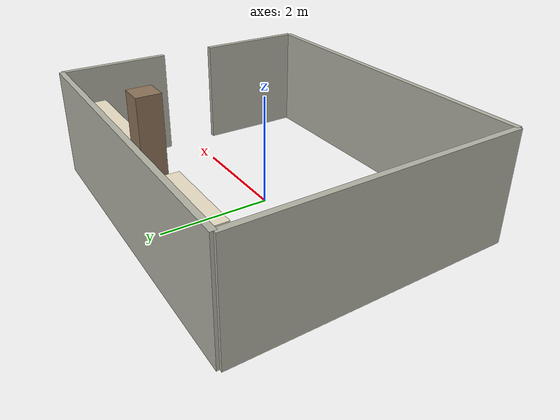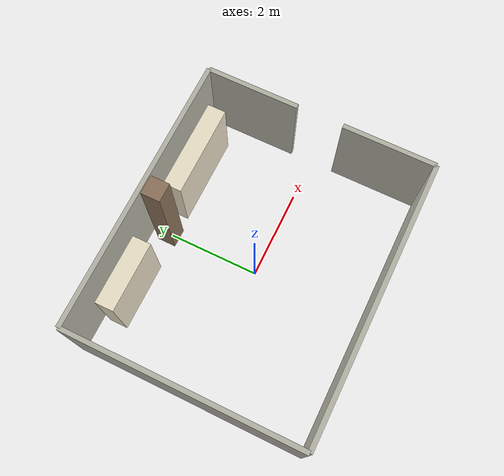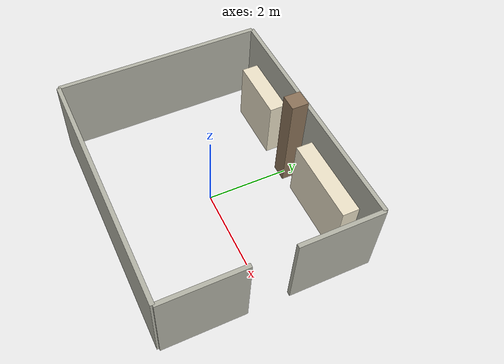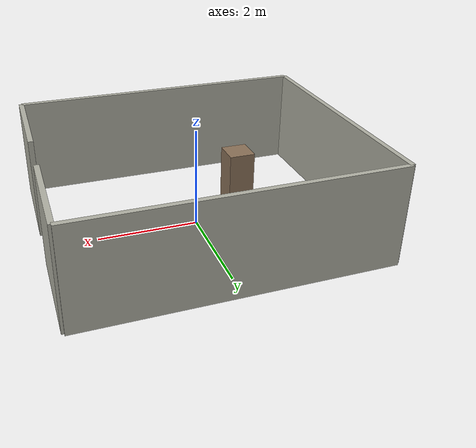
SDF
<?xml version='1.0' encoding='ASCII'?>
<sdf version='1.7'>
  <world name='robocart_classroom'>
    <physics type="ode">
      <max_step_size>0.003</max_step_size>
      <real_time_factor>1.0</real_time_factor>
    </physics>
    <plugin name='ignition::gazebo::systems::Physics' filename='libignition-gazebo-physics-system.so'/>
    <plugin name='ignition::gazebo::systems::UserCommands' filename='libignition-gazebo-user-commands-system.so'/>
    <plugin name='ignition::gazebo::systems::SceneBroadcaster' filename='libignition-gazebo-scene-broadcaster-system.so'/>

    <scene>
      <ambient>1 1 1 1</ambient>
      <background>0.3 0.7 0.9 1</background>
      <shadows>0</shadows>
      <grid>false</grid>
    </scene>

    <!-- 바닥 (collision-only, warehouse 패턴) -->
    <model name='ground_plane'>
      <static>true</static>
      <link name='link'>
        <collision name='collision'>
          <geometry>
            <plane>
              <normal>0.0 0.0 1</normal>
              <size>1 1</size>
            </plane>
          </geometry>
        </collision>
      </link>
      <pose>0 0 0 0 0 0</pose>
    </model>

    <!-- 북쪽 벽 (사물함 뒤) -->
    <model name='wall_north'>
      <static>true</static>
      <pose>0 2.5 1 0 0 0</pose>
      <link name='link'>
        <collision name='c'><geometry><box><size>6 0.1 2</size></box></geometry></collision>
        <visual name='v'>
          <geometry><box><size>6 0.1 2</size></box></geometry>
          <material><ambient>0.7 0.7 0.65 1</ambient><diffuse>0.7 0.7 0.65 1</diffuse></material>
        </visual>
      </link>
    </model>

    <!-- 남쪽 벽 -->
    <model name='wall_south'>
      <static>true</static>
      <pose>0 -2.5 1 0 0 0</pose>
      <link name='link'>
        <collision name='c'><geometry><box><size>6 0.1 2</size></box></geometry></collision>
        <visual name='v'>
          <geometry><box><size>6 0.1 2</size></box></geometry>
          <material><ambient>0.7 0.7 0.65 1</ambient><diffuse>0.7 0.7 0.65 1</diffuse></material>
        </visual>
      </link>
    </model>

    <!-- 서쪽 벽 -->
    <model name='wall_west'>
      <static>true</static>
      <pose>-3 0 1 0 0 0</pose>
      <link name='link'>
        <collision name='c'><geometry><box><size>0.1 5 2</size></box></geometry></collision>
        <visual name='v'>
          <geometry><box><size>0.1 5 2</size></box></geometry>
          <material><ambient>0.7 0.7 0.65 1</ambient><diffuse>0.7 0.7 0.65 1</diffuse></material>
        </visual>
      </link>
    </model>

    <!-- 동쪽 벽 위 절반 -->
    <model name='wall_east_top'>
      <static>true</static>
      <pose>3 1.5 1 0 0 0</pose>
      <link name='link'>
        <collision name='c'><geometry><box><size>0.1 2 2</size></box></geometry></collision>
        <visual name='v'>
          <geometry><box><size>0.1 2 2</size></box></geometry>
          <material><ambient>0.7 0.7 0.65 1</ambient><diffuse>0.7 0.7 0.65 1</diffuse></material>
        </visual>
      </link>
    </model>

    <!-- 동쪽 벽 아래 절반 (문 개구부 y ∈ [-0.5, 0.5]) -->
    <model name='wall_east_bottom'>
      <static>true</static>
      <pose>3 -1.5 1 0 0 0</pose>
      <link name='link'>
        <collision name='c'><geometry><box><size>0.1 2 2</size></box></geometry></collision>
        <visual name='v'>
          <geometry><box><size>0.1 2 2</size></box></geometry>
          <material><ambient>0.7 0.7 0.65 1</ambient><diffuse>0.7 0.7 0.65 1</diffuse></material>
        </visual>
      </link>
    </model>

    <!-- 사물함 왼쪽 -->
    <model name='lockers_left'>
      <static>true</static>
      <pose>-1.5 2.1 0.75 0 0 0</pose>
      <link name='link'>
        <collision name='c'><geometry><box><size>1.5 0.4 1.5</size></box></geometry></collision>
        <visual name='v'>
          <geometry><box><size>1.5 0.4 1.5</size></box></geometry>
          <material><ambient>0.92 0.88 0.78 1</ambient><diffuse>0.92 0.88 0.78 1</diffuse></material>
        </visual>
      </link>
    </model>

    <!-- 사물함 오른쪽 -->
    <model name='lockers_right'>
      <static>true</static>
      <pose>1.5 2.1 0.75 0 0 0</pose>
      <link name='link'>
        <collision name='c'><geometry><box><size>2 0.4 1.5</size></box></geometry></collision>
        <visual name='v'>
          <geometry><box><size>2 0.4 1.5</size></box></geometry>
          <material><ambient>0.92 0.88 0.78 1</ambient><diffuse>0.92 0.88 0.78 1</diffuse></material>
        </visual>
      </link>
    </model>

    <!-- 중앙 기둥 -->
    <model name='pillar'>
      <static>true</static>
      <pose>0 2.05 1.25 0 0 0</pose>
      <link name='link'>
        <collision name='c'><geometry><box><size>0.4 0.4 2.5</size></box></geometry></collision>
        <visual name='v'>
          <geometry><box><size>0.4 0.4 2.5</size></box></geometry>
          <material><ambient>0.55 0.45 0.35 1</ambient><diffuse>0.55 0.45 0.35 1</diffuse></material>
        </visual>
      </link>
    </model>

  </world>
</sdf>
